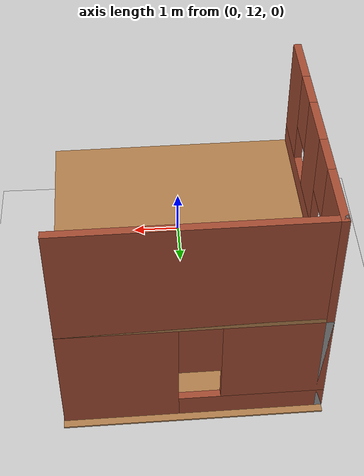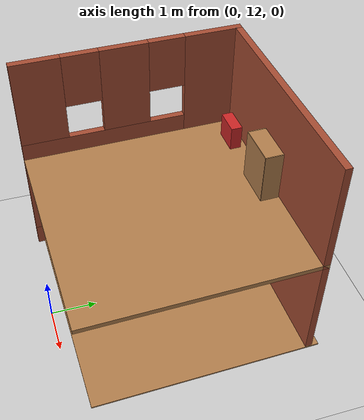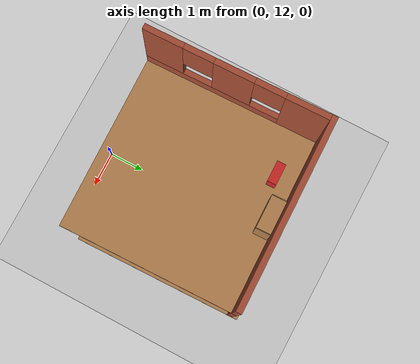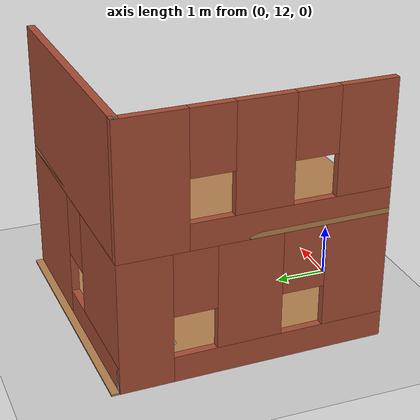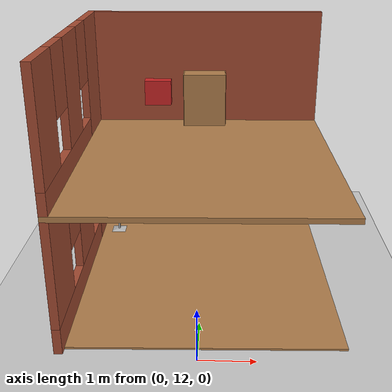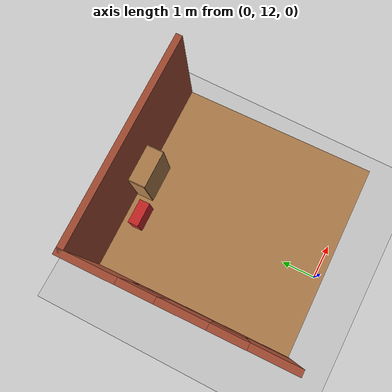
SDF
<sdf version="1.6">
 <world name="default">
  <model name="ground_plane">
   <static>1</static>
   <link name="link">
    <collision name="collision">
     <geometry><plane><normal>0 0 1</normal><size>100 100</size></plane></geometry>
     <surface><friction><ode><mu>100</mu><mu2>50</mu2></ode></friction></surface>
    </collision>
    <visual name="visual">
     <cast_shadows>0</cast_shadows>
     <geometry><plane><normal>0 0 1</normal><size>100 100</size></plane></geometry>
     <material>
      <script><uri>file://media/materials/scripts/gazebo.material</uri><name>Gazebo/Grey</name></script>
     </material>
    </visual>
   </link>
  </model>
  <model name="building1">
   <link name="Floor_0">
    <pose>0 0 2.5 0 -0 0</pose>
    <inertial>
     <mass>1</mass>
     <inertia><ixx>1</ixx><ixy>0</ixy><ixz>0</ixz><iyy>1</iyy><iyz>0</iyz><izz>1</izz></inertia>
    </inertial>
    <visual name="Floor_0_Visual">
     <pose>0 0 0.05 0 -0 0</pose>
     <geometry><box><size>5 5 0.1</size></box></geometry>
     <material>
      <script><uri>file://media/materials/scripts/gazebo.material</uri><name>Gazebo/Wood</name></script>
      <ambient>1 1 1 1</ambient>
      <shader type="pixel"><normal_map>__default__</normal_map></shader>
     </material>
     <meta><layer>1</layer></meta>
    </visual>
    <collision name="Floor_0_Collision">
     <pose>0 0 0.05 0 -0 0</pose>
     <geometry><box><size>5 5 0.1</size></box></geometry>
     <surface>
      <friction>
       <ode><mu>1</mu><mu2>1</mu2><fdir1>0 0 0</fdir1><slip1>0</slip1><slip2>0</slip2></ode>
       <torsional>
        <coefficient>1</coefficient>
        <patch_radius>0</patch_radius>
        <surface_radius>0</surface_radius>
        <use_patch_radius>1</use_patch_radius>
        <ode><slip>0</slip></ode>
       </torsional>
      </friction>
      <bounce><restitution_coefficient>0</restitution_coefficient><threshold>1e+06</threshold></bounce>
      <contact>
       <collide_without_contact>0</collide_without_contact>
       <collide_without_contact_bitmask>1</collide_without_contact_bitmask>
       <collide_bitmask>1</collide_bitmask>
       <ode>
        <soft_cfm>0</soft_cfm>
        <soft_erp>0.2</soft_erp>
        <kp>1e+13</kp>
        <kd>1</kd>
        <max_vel>0.01</max_vel>
        <min_depth>0</min_depth>
       </ode>
       <bullet>
        <split_impulse>1</split_impulse>
        <split_impulse_penetration_threshold>-0.01</split_impulse_penetration_threshold>
        <soft_cfm>0</soft_cfm>
        <soft_erp>0.2</soft_erp>
        <kp>1e+13</kp>
        <kd>1</kd>
       </bullet>
      </contact>
     </surface>
    </collision>
   </link>
   <link name="Floor_0_clone">
    <pose>-0.013101 -0.148574 -0.075535 0 -0 0</pose>
    <gravity>0</gravity>
    <inertial>
     <mass>1</mass>
     <inertia><ixx>1</ixx><ixy>0</ixy><ixz>0</ixz><iyy>1</iyy><iyz>0</iyz><izz>1</izz></inertia>
    </inertial>
    <visual name="Floor_0_Visual">
     <pose>0 0 0.05 0 -0 0</pose>
     <geometry><box><size>5 5 0.1</size></box></geometry>
     <material>
      <script><uri>file://media/materials/scripts/gazebo.material</uri><name>Gazebo/Wood</name></script>
      <ambient>1 1 1 1</ambient>
      <shader type="pixel"><normal_map>__default__</normal_map></shader>
     </material>
     <meta><layer>1</layer></meta>
    </visual>
    <collision name="Floor_0_Collision">
     <pose>0 0 0.05 0 -0 0</pose>
     <geometry><box><size>5 5 0.1</size></box></geometry>
     <surface>
      <friction>
       <ode><mu>1</mu><mu2>1</mu2><fdir1>0 0 0</fdir1><slip1>0</slip1><slip2>0</slip2></ode>
       <torsional>
        <coefficient>1</coefficient>
        <patch_radius>0</patch_radius>
        <surface_radius>0</surface_radius>
        <use_patch_radius>1</use_patch_radius>
        <ode><slip>0</slip></ode>
       </torsional>
      </friction>
      <bounce><restitution_coefficient>0</restitution_coefficient><threshold>1e+06</threshold></bounce>
      <contact>
       <collide_without_contact>0</collide_without_contact>
       <collide_without_contact_bitmask>1</collide_without_contact_bitmask>
       <collide_bitmask>1</collide_bitmask>
       <ode>
        <soft_cfm>0</soft_cfm>
        <soft_erp>0.2</soft_erp>
        <kp>1e+13</kp>
        <kd>1</kd>
        <max_vel>0.01</max_vel>
        <min_depth>0</min_depth>
       </ode>
       <bullet>
        <split_impulse>1</split_impulse>
        <split_impulse_penetration_threshold>-0.01</split_impulse_penetration_threshold>
        <soft_cfm>0</soft_cfm>
        <soft_erp>0.2</soft_erp>
        <kp>1e+13</kp>
        <kd>1</kd>
       </bullet>
      </contact>
     </surface>
    </collision>
   </link>
   <link name="Wall_1">
    <pose>0 -2.425 0 0 -0 0</pose>
    <visual name="Wall_1_Visual_3">
     <pose>0.109106 0 1.9 0 -0 0</pose>
     <geometry><box><size>0.8 0.15 1.2</size></box></geometry>
     <material>
      <script><uri>file://media/materials/scripts/gazebo.material</uri><name>Gazebo/Bricks</name></script>
      <ambient>1 1 1 1</ambient>
      <shader type="pixel"/>
     </material>
     <meta><layer>0</layer></meta>
    </visual>
    <visual name="Wall_1_Visual_1">
     <pose>1.10455 0 0.25 0 -0 0</pose>
     <geometry><box><size>2.79089 0.15 0.5</size></box></geometry>
     <material>
      <script><uri>file://media/materials/scripts/gazebo.material</uri><name>Gazebo/Bricks</name></script>
      <ambient>1 1 1 1</ambient>
      <shader type="pixel"/>
     </material>
     <meta><layer>0</layer></meta>
    </visual>
    <visual name="Wall_1_Visual_2">
     <pose>1.50455 0 1.5 0 -0 0</pose>
     <geometry><box><size>1.99089 0.15 2</size></box></geometry>
     <material>
      <script><uri>file://media/materials/scripts/gazebo.material</uri><name>Gazebo/Bricks</name></script>
      <ambient>1 1 1 1</ambient>
      <shader type="pixel"/>
     </material>
     <meta><layer>0</layer></meta>
    </visual>
    <visual name="Wall_1_Visual_0">
     <pose>-1.39545 0 1.25 0 -0 0</pose>
     <geometry><box><size>2.20911 0.15 2.5</size></box></geometry>
     <material>
      <script><uri>file://media/materials/scripts/gazebo.material</uri><name>Gazebo/Bricks</name></script>
      <ambient>1 1 1 1</ambient>
      <shader type="pixel"/>
     </material>
     <meta><layer>0</layer></meta>
    </visual>
    <collision name="Wall_1_Collision_3">
     <pose>0.109106 0 1.9 0 -0 0</pose>
     <geometry><box><size>0.8 0.15 1.2</size></box></geometry>
     <surface>
      <friction>
       <ode><mu>1</mu><mu2>1</mu2><fdir1>0 0 0</fdir1><slip1>0</slip1><slip2>0</slip2></ode>
       <torsional>
        <coefficient>1</coefficient>
        <patch_radius>0</patch_radius>
        <surface_radius>0</surface_radius>
        <use_patch_radius>1</use_patch_radius>
        <ode><slip>0</slip></ode>
       </torsional>
      </friction>
      <bounce><restitution_coefficient>0</restitution_coefficient><threshold>1e+06</threshold></bounce>
      <contact>
       <collide_without_contact>0</collide_without_contact>
       <collide_without_contact_bitmask>1</collide_without_contact_bitmask>
       <collide_bitmask>1</collide_bitmask>
       <ode>
        <soft_cfm>0</soft_cfm>
        <soft_erp>0.2</soft_erp>
        <kp>1e+13</kp>
        <kd>1</kd>
        <max_vel>0.01</max_vel>
        <min_depth>0</min_depth>
       </ode>
       <bullet>
        <split_impulse>1</split_impulse>
        <split_impulse_penetration_threshold>-0.01</split_impulse_penetration_threshold>
        <soft_cfm>0</soft_cfm>
        <soft_erp>0.2</soft_erp>
        <kp>1e+13</kp>
        <kd>1</kd>
       </bullet>
      </contact>
     </surface>
    </collision>
    <collision name="Wall_1_Collision_2">
     <pose>1.50455 0 1.5 0 -0 0</pose>
     <geometry><box><size>1.99089 0.15 2</size></box></geometry>
     <surface>
      <friction>
       <ode><mu>1</mu><mu2>1</mu2><fdir1>0 0 0</fdir1><slip1>0</slip1><slip2>0</slip2></ode>
       <torsional>
        <coefficient>1</coefficient>
        <patch_radius>0</patch_radius>
        <surface_radius>0</surface_radius>
        <use_patch_radius>1</use_patch_radius>
        <ode><slip>0</slip></ode>
       </torsional>
      </friction>
      <bounce><restitution_coefficient>0</restitution_coefficient><threshold>1e+06</threshold></bounce>
      <contact>
       <collide_without_contact>0</collide_without_contact>
       <collide_without_contact_bitmask>1</collide_without_contact_bitmask>
       <collide_bitmask>1</collide_bitmask>
       <ode>
        <soft_cfm>0</soft_cfm>
        <soft_erp>0.2</soft_erp>
        <kp>1e+13</kp>
        <kd>1</kd>
        <max_vel>0.01</max_vel>
        <min_depth>0</min_depth>
       </ode>
       <bullet>
        <split_impulse>1</split_impulse>
        <split_impulse_penetration_threshold>-0.01</split_impulse_penetration_threshold>
        <soft_cfm>0</soft_cfm>
        <soft_erp>0.2</soft_erp>
        <kp>1e+13</kp>
        <kd>1</kd>
       </bullet>
      </contact>
     </surface>
    </collision>
    <collision name="Wall_1_Collision_1">
     <pose>1.10455 0 0.25 0 -0 0</pose>
     <geometry><box><size>2.79089 0.15 0.5</size></box></geometry>
     <surface>
      <friction>
       <ode><mu>1</mu><mu2>1</mu2><fdir1>0 0 0</fdir1><slip1>0</slip1><slip2>0</slip2></ode>
       <torsional>
        <coefficient>1</coefficient>
        <patch_radius>0</patch_radius>
        <surface_radius>0</surface_radius>
        <use_patch_radius>1</use_patch_radius>
        <ode><slip>0</slip></ode>
       </torsional>
      </friction>
      <bounce><restitution_coefficient>0</restitution_coefficient><threshold>1e+06</threshold></bounce>
      <contact>
       <collide_without_contact>0</collide_without_contact>
       <collide_without_contact_bitmask>1</collide_without_contact_bitmask>
       <collide_bitmask>1</collide_bitmask>
       <ode>
        <soft_cfm>0</soft_cfm>
        <soft_erp>0.2</soft_erp>
        <kp>1e+13</kp>
        <kd>1</kd>
        <max_vel>0.01</max_vel>
        <min_depth>0</min_depth>
       </ode>
       <bullet>
        <split_impulse>1</split_impulse>
        <split_impulse_penetration_threshold>-0.01</split_impulse_penetration_threshold>
        <soft_cfm>0</soft_cfm>
        <soft_erp>0.2</soft_erp>
        <kp>1e+13</kp>
        <kd>1</kd>
       </bullet>
      </contact>
     </surface>
    </collision>
    <collision name="Wall_1_Collision_0">
     <pose>-1.39545 0 1.25 0 -0 0</pose>
     <geometry><box><size>2.20911 0.15 2.5</size></box></geometry>
     <surface>
      <friction>
       <ode><mu>1</mu><mu2>1</mu2><fdir1>0 0 0</fdir1><slip1>0</slip1><slip2>0</slip2></ode>
       <torsional>
        <coefficient>1</coefficient>
        <patch_radius>0</patch_radius>
        <surface_radius>0</surface_radius>
        <use_patch_radius>1</use_patch_radius>
        <ode><slip>0</slip></ode>
       </torsional>
      </friction>
      <bounce><restitution_coefficient>0</restitution_coefficient><threshold>1e+06</threshold></bounce>
      <contact>
       <collide_without_contact>0</collide_without_contact>
       <collide_without_contact_bitmask>1</collide_without_contact_bitmask>
       <collide_bitmask>1</collide_bitmask>
       <ode>
        <soft_cfm>0</soft_cfm>
        <soft_erp>0.2</soft_erp>
        <kp>1e+13</kp>
        <kd>1</kd>
        <max_vel>0.01</max_vel>
        <min_depth>0</min_depth>
       </ode>
       <bullet>
        <split_impulse>1</split_impulse>
        <split_impulse_penetration_threshold>-0.01</split_impulse_penetration_threshold>
        <soft_cfm>0</soft_cfm>
        <soft_erp>0.2</soft_erp>
        <kp>1e+13</kp>
        <kd>1</kd>
       </bullet>
      </contact>
     </surface>
    </collision>
   </link>
   <link name="Wall_2">
    <pose>2.425 -2.425 0 0 -0 0</pose>
    <visual name="Wall_2_Visual">
     <pose>0 0 1.25 0 -0 0</pose>
     <geometry><box><size>0.15 0.15 2.5</size></box></geometry>
     <material>
      <script><uri>file://media/materials/scripts/gazebo.material</uri><name>Gazebo/Grey</name></script>
      <ambient>1 1 1 1</ambient>
      <shader type="pixel"/>
     </material>
     <meta><layer>0</layer></meta>
    </visual>
    <collision name="Wall_2_Collision">
     <pose>0 0 1.25 0 -0 0</pose>
     <geometry><box><size>0.15 0.15 2.5</size></box></geometry>
     <surface>
      <friction>
       <ode><mu>1</mu><mu2>1</mu2><fdir1>0 0 0</fdir1><slip1>0</slip1><slip2>0</slip2></ode>
       <torsional>
        <coefficient>1</coefficient>
        <patch_radius>0</patch_radius>
        <surface_radius>0</surface_radius>
        <use_patch_radius>1</use_patch_radius>
        <ode><slip>0</slip></ode>
       </torsional>
      </friction>
      <bounce><restitution_coefficient>0</restitution_coefficient><threshold>1e+06</threshold></bounce>
      <contact>
       <collide_without_contact>0</collide_without_contact>
       <collide_without_contact_bitmask>1</collide_without_contact_bitmask>
       <collide_bitmask>1</collide_bitmask>
       <ode>
        <soft_cfm>0</soft_cfm>
        <soft_erp>0.2</soft_erp>
        <kp>1e+13</kp>
        <kd>1</kd>
        <max_vel>0.01</max_vel>
        <min_depth>0</min_depth>
       </ode>
       <bullet>
        <split_impulse>1</split_impulse>
        <split_impulse_penetration_threshold>-0.01</split_impulse_penetration_threshold>
        <soft_cfm>0</soft_cfm>
        <soft_erp>0.2</soft_erp>
        <kp>1e+13</kp>
        <kd>1</kd>
       </bullet>
      </contact>
     </surface>
    </collision>
   </link>
   <link name="Wall_3">
    <pose>2.425 0 0 0 -0 1.5708</pose>
    <visual name="Wall_3_Visual_4">
     <pose>-1.11345 0 1.9 0 -0 0</pose>
     <geometry><box><size>0.8 0.15 1.2</size></box></geometry>
     <material>
      <script><uri>file://media/materials/scripts/gazebo.material</uri><name>Gazebo/Bricks</name></script>
      <ambient>1 1 1 1</ambient>
      <shader type="pixel"/>
     </material>
     <meta><layer>0</layer></meta>
    </visual>
    <visual name="Wall_3_Visual_2">
     <pose>-0.109669 0 1.5 0 -0 0</pose>
     <geometry><box><size>1.20755 0.15 2</size></box></geometry>
     <material>
      <script><uri>file://media/materials/scripts/gazebo.material</uri><name>Gazebo/Bricks</name></script>
      <ambient>1 1 1 1</ambient>
      <shader type="pixel"/>
     </material>
     <meta><layer>0</layer></meta>
    </visual>
    <visual name="Wall_3_Visual_1">
     <pose>0.493277 0 0.25 0 -0 0</pose>
     <geometry><box><size>4.01345 0.15 0.5</size></box></geometry>
     <material>
      <script><uri>file://media/materials/scripts/gazebo.material</uri><name>Gazebo/Bricks</name></script>
      <ambient>1 1 1 1</ambient>
      <shader type="pixel"/>
     </material>
     <meta><layer>0</layer></meta>
    </visual>
    <visual name="Wall_3_Visual_5">
     <pose>0.894108 0 1.9 0 -0 0</pose>
     <geometry><box><size>0.8 0.15 1.2</size></box></geometry>
     <material>
      <script><uri>file://media/materials/scripts/gazebo.material</uri><name>Gazebo/Bricks</name></script>
      <ambient>1 1 1 1</ambient>
      <shader type="pixel"/>
     </material>
     <meta><layer>0</layer></meta>
    </visual>
    <visual name="Wall_3_Visual_0">
     <pose>-2.00672 0 1.25 0 -0 0</pose>
     <geometry><box><size>0.986553 0.15 2.5</size></box></geometry>
     <material>
      <script><uri>file://media/materials/scripts/gazebo.material</uri><name>Gazebo/Bricks</name></script>
      <ambient>1 1 1 1</ambient>
      <shader type="pixel"/>
     </material>
     <meta><layer>0</layer></meta>
    </visual>
    <visual name="Wall_3_Visual_3">
     <pose>1.89705 0 1.5 0 -0 0</pose>
     <geometry><box><size>1.20589 0.15 2</size></box></geometry>
     <material>
      <script><uri>file://media/materials/scripts/gazebo.material</uri><name>Gazebo/Bricks</name></script>
      <ambient>1 1 1 1</ambient>
      <shader type="pixel"/>
     </material>
     <meta><layer>0</layer></meta>
    </visual>
    <collision name="Wall_3_Collision_3">
     <pose>1.89705 0 1.5 0 -0 0</pose>
     <geometry><box><size>1.20589 0.15 2</size></box></geometry>
     <surface>
      <friction>
       <ode><mu>1</mu><mu2>1</mu2><fdir1>0 0 0</fdir1><slip1>0</slip1><slip2>0</slip2></ode>
       <torsional>
        <coefficient>1</coefficient>
        <patch_radius>0</patch_radius>
        <surface_radius>0</surface_radius>
        <use_patch_radius>1</use_patch_radius>
        <ode><slip>0</slip></ode>
       </torsional>
      </friction>
      <bounce><restitution_coefficient>0</restitution_coefficient><threshold>1e+06</threshold></bounce>
      <contact>
       <collide_without_contact>0</collide_without_contact>
       <collide_without_contact_bitmask>1</collide_without_contact_bitmask>
       <collide_bitmask>1</collide_bitmask>
       <ode>
        <soft_cfm>0</soft_cfm>
        <soft_erp>0.2</soft_erp>
        <kp>1e+13</kp>
        <kd>1</kd>
        <max_vel>0.01</max_vel>
        <min_depth>0</min_depth>
       </ode>
       <bullet>
        <split_impulse>1</split_impulse>
        <split_impulse_penetration_threshold>-0.01</split_impulse_penetration_threshold>
        <soft_cfm>0</soft_cfm>
        <soft_erp>0.2</soft_erp>
        <kp>1e+13</kp>
        <kd>1</kd>
       </bullet>
      </contact>
     </surface>
    </collision>
    <collision name="Wall_3_Collision_1">
     <pose>0.493277 0 0.25 0 -0 0</pose>
     <geometry><box><size>4.01345 0.15 0.5</size></box></geometry>
     <surface>
      <friction>
       <ode><mu>1</mu><mu2>1</mu2><fdir1>0 0 0</fdir1><slip1>0</slip1><slip2>0</slip2></ode>
       <torsional>
        <coefficient>1</coefficient>
        <patch_radius>0</patch_radius>
        <surface_radius>0</surface_radius>
        <use_patch_radius>1</use_patch_radius>
        <ode><slip>0</slip></ode>
       </torsional>
      </friction>
      <bounce><restitution_coefficient>0</restitution_coefficient><threshold>1e+06</threshold></bounce>
      <contact>
       <collide_without_contact>0</collide_without_contact>
       <collide_without_contact_bitmask>1</collide_without_contact_bitmask>
       <collide_bitmask>1</collide_bitmask>
       <ode>
        <soft_cfm>0</soft_cfm>
        <soft_erp>0.2</soft_erp>
        <kp>1e+13</kp>
        <kd>1</kd>
        <max_vel>0.01</max_vel>
        <min_depth>0</min_depth>
       </ode>
       <bullet>
        <split_impulse>1</split_impulse>
        <split_impulse_penetration_threshold>-0.01</split_impulse_penetration_threshold>
        <soft_cfm>0</soft_cfm>
        <soft_erp>0.2</soft_erp>
        <kp>1e+13</kp>
        <kd>1</kd>
       </bullet>
      </contact>
     </surface>
    </collision>
    <collision name="Wall_3_Collision_4">
     <pose>-1.11345 0 1.9 0 -0 0</pose>
     <geometry><box><size>0.8 0.15 1.2</size></box></geometry>
     <surface>
      <friction>
       <ode><mu>1</mu><mu2>1</mu2><fdir1>0 0 0</fdir1><slip1>0</slip1><slip2>0</slip2></ode>
       <torsional>
        <coefficient>1</coefficient>
        <patch_radius>0</patch_radius>
        <surface_radius>0</surface_radius>
        <use_patch_radius>1</use_patch_radius>
        <ode><slip>0</slip></ode>
       </torsional>
      </friction>
      <bounce><restitution_coefficient>0</restitution_coefficient><threshold>1e+06</threshold></bounce>
      <contact>
       <collide_without_contact>0</collide_without_contact>
       <collide_without_contact_bitmask>1</collide_without_contact_bitmask>
       <collide_bitmask>1</collide_bitmask>
       <ode>
        <soft_cfm>0</soft_cfm>
        <soft_erp>0.2</soft_erp>
        <kp>1e+13</kp>
        <kd>1</kd>
        <max_vel>0.01</max_vel>
        <min_depth>0</min_depth>
       </ode>
       <bullet>
        <split_impulse>1</split_impulse>
        <split_impulse_penetration_threshold>-0.01</split_impulse_penetration_threshold>
        <soft_cfm>0</soft_cfm>
        <soft_erp>0.2</soft_erp>
        <kp>1e+13</kp>
        <kd>1</kd>
       </bullet>
      </contact>
     </surface>
    </collision>
    <collision name="Wall_3_Collision_5">
     <pose>0.894108 0 1.9 0 -0 0</pose>
     <geometry><box><size>0.8 0.15 1.2</size></box></geometry>
     <surface>
      <friction>
       <ode><mu>1</mu><mu2>1</mu2><fdir1>0 0 0</fdir1><slip1>0</slip1><slip2>0</slip2></ode>
       <torsional>
        <coefficient>1</coefficient>
        <patch_radius>0</patch_radius>
        <surface_radius>0</surface_radius>
        <use_patch_radius>1</use_patch_radius>
        <ode><slip>0</slip></ode>
       </torsional>
      </friction>
      <bounce><restitution_coefficient>0</restitution_coefficient><threshold>1e+06</threshold></bounce>
      <contact>
       <collide_without_contact>0</collide_without_contact>
       <collide_without_contact_bitmask>1</collide_without_contact_bitmask>
       <collide_bitmask>1</collide_bitmask>
       <ode>
        <soft_cfm>0</soft_cfm>
        <soft_erp>0.2</soft_erp>
        <kp>1e+13</kp>
        <kd>1</kd>
        <max_vel>0.01</max_vel>
        <min_depth>0</min_depth>
       </ode>
       <bullet>
        <split_impulse>1</split_impulse>
        <split_impulse_penetration_threshold>-0.01</split_impulse_penetration_threshold>
        <soft_cfm>0</soft_cfm>
        <soft_erp>0.2</soft_erp>
        <kp>1e+13</kp>
        <kd>1</kd>
       </bullet>
      </contact>
     </surface>
    </collision>
    <collision name="Wall_3_Collision_2">
     <pose>-0.109669 0 1.5 0 -0 0</pose>
     <geometry><box><size>1.20755 0.15 2</size></box></geometry>
     <surface>
      <friction>
       <ode><mu>1</mu><mu2>1</mu2><fdir1>0 0 0</fdir1><slip1>0</slip1><slip2>0</slip2></ode>
       <torsional>
        <coefficient>1</coefficient>
        <patch_radius>0</patch_radius>
        <surface_radius>0</surface_radius>
        <use_patch_radius>1</use_patch_radius>
        <ode><slip>0</slip></ode>
       </torsional>
      </friction>
      <bounce><restitution_coefficient>0</restitution_coefficient><threshold>1e+06</threshold></bounce>
      <contact>
       <collide_without_contact>0</collide_without_contact>
       <collide_without_contact_bitmask>1</collide_without_contact_bitmask>
       <collide_bitmask>1</collide_bitmask>
       <ode>
        <soft_cfm>0</soft_cfm>
        <soft_erp>0.2</soft_erp>
        <kp>1e+13</kp>
        <kd>1</kd>
        <max_vel>0.01</max_vel>
        <min_depth>0</min_depth>
       </ode>
       <bullet>
        <split_impulse>1</split_impulse>
        <split_impulse_penetration_threshold>-0.01</split_impulse_penetration_threshold>
        <soft_cfm>0</soft_cfm>
        <soft_erp>0.2</soft_erp>
        <kp>1e+13</kp>
        <kd>1</kd>
       </bullet>
      </contact>
     </surface>
    </collision>
    <collision name="Wall_3_Collision_0">
     <pose>-2.00672 0 1.25 0 -0 0</pose>
     <geometry><box><size>0.986553 0.15 2.5</size></box></geometry>
     <surface>
      <friction>
       <ode><mu>1</mu><mu2>1</mu2><fdir1>0 0 0</fdir1><slip1>0</slip1><slip2>0</slip2></ode>
       <torsional>
        <coefficient>1</coefficient>
        <patch_radius>0</patch_radius>
        <surface_radius>0</surface_radius>
        <use_patch_radius>1</use_patch_radius>
        <ode><slip>0</slip></ode>
       </torsional>
      </friction>
      <bounce><restitution_coefficient>0</restitution_coefficient><threshold>1e+06</threshold></bounce>
      <contact>
       <collide_without_contact>0</collide_without_contact>
       <collide_without_contact_bitmask>1</collide_without_contact_bitmask>
       <collide_bitmask>1</collide_bitmask>
       <ode>
        <soft_cfm>0</soft_cfm>
        <soft_erp>0.2</soft_erp>
        <kp>1e+13</kp>
        <kd>1</kd>
        <max_vel>0.01</max_vel>
        <min_depth>0</min_depth>
       </ode>
       <bullet>
        <split_impulse>1</split_impulse>
        <split_impulse_penetration_threshold>-0.01</split_impulse_penetration_threshold>
        <soft_cfm>0</soft_cfm>
        <soft_erp>0.2</soft_erp>
        <kp>1e+13</kp>
        <kd>1</kd>
       </bullet>
      </contact>
     </surface>
    </collision>
   </link>
   <link name="Wall_7">
    <pose>0 -2.425 2.5 0 -0 0</pose>
    <visual name="Wall_7_Visual">
     <pose>0 0 1.25 0 -0 0</pose>
     <geometry><box><size>5 0.15 2.5</size></box></geometry>
     <material>
      <script><uri>file://media/materials/scripts/gazebo.material</uri><name>Gazebo/Bricks</name></script>
      <ambient>1 1 1 1</ambient>
      <shader type="pixel"/>
     </material>
     <meta><layer>1</layer></meta>
    </visual>
    <collision name="Wall_7_Collision">
     <pose>0 0 1.25 0 -0 0</pose>
     <geometry><box><size>5 0.15 2.5</size></box></geometry>
     <surface>
      <friction>
       <ode><mu>1</mu><mu2>1</mu2><fdir1>0 0 0</fdir1><slip1>0</slip1><slip2>0</slip2></ode>
       <torsional>
        <coefficient>1</coefficient>
        <patch_radius>0</patch_radius>
        <surface_radius>0</surface_radius>
        <use_patch_radius>1</use_patch_radius>
        <ode><slip>0</slip></ode>
       </torsional>
      </friction>
      <bounce><restitution_coefficient>0</restitution_coefficient><threshold>1e+06</threshold></bounce>
      <contact>
       <collide_without_contact>0</collide_without_contact>
       <collide_without_contact_bitmask>1</collide_without_contact_bitmask>
       <collide_bitmask>1</collide_bitmask>
       <ode>
        <soft_cfm>0</soft_cfm>
        <soft_erp>0.2</soft_erp>
        <kp>1e+13</kp>
        <kd>1</kd>
        <max_vel>0.01</max_vel>
        <min_depth>0</min_depth>
       </ode>
       <bullet>
        <split_impulse>1</split_impulse>
        <split_impulse_penetration_threshold>-0.01</split_impulse_penetration_threshold>
        <soft_cfm>0</soft_cfm>
        <soft_erp>0.2</soft_erp>
        <kp>1e+13</kp>
        <kd>1</kd>
       </bullet>
      </contact>
     </surface>
    </collision>
   </link>
   <link name="Wall_8">
    <pose>2.425 -2.425 2.5 0 -0 0</pose>
    <visual name="Wall_8_Visual">
     <pose>0 0 1.25 0 -0 0</pose>
     <geometry><box><size>0.15 0.15 2.5</size></box></geometry>
     <material>
      <script><uri>file://media/materials/scripts/gazebo.material</uri><name>Gazebo/Grey</name></script>
      <ambient>1 1 1 1</ambient>
      <shader type="pixel"/>
     </material>
     <meta><layer>1</layer></meta>
    </visual>
    <collision name="Wall_8_Collision">
     <pose>0 0 1.25 0 -0 0</pose>
     <geometry><box><size>0.15 0.15 2.5</size></box></geometry>
     <surface>
      <friction>
       <ode><mu>1</mu><mu2>1</mu2><fdir1>0 0 0</fdir1><slip1>0</slip1><slip2>0</slip2></ode>
       <torsional>
        <coefficient>1</coefficient>
        <patch_radius>0</patch_radius>
        <surface_radius>0</surface_radius>
        <use_patch_radius>1</use_patch_radius>
        <ode><slip>0</slip></ode>
       </torsional>
      </friction>
      <bounce><restitution_coefficient>0</restitution_coefficient><threshold>1e+06</threshold></bounce>
      <contact>
       <collide_without_contact>0</collide_without_contact>
       <collide_without_contact_bitmask>1</collide_without_contact_bitmask>
       <collide_bitmask>1</collide_bitmask>
       <ode>
        <soft_cfm>0</soft_cfm>
        <soft_erp>0.2</soft_erp>
        <kp>1e+13</kp>
        <kd>1</kd>
        <max_vel>0.01</max_vel>
        <min_depth>0</min_depth>
       </ode>
       <bullet>
        <split_impulse>1</split_impulse>
        <split_impulse_penetration_threshold>-0.01</split_impulse_penetration_threshold>
        <soft_cfm>0</soft_cfm>
        <soft_erp>0.2</soft_erp>
        <kp>1e+13</kp>
        <kd>1</kd>
       </bullet>
      </contact>
     </surface>
    </collision>
   </link>
   <link name="Wall_9">
    <pose>2.425 0 2.5 0 -0 1.5708</pose>
    <visual name="Wall_9_Visual_0">
     <pose>-1.85873 0 1.25 0 -0 0</pose>
     <geometry><box><size>1.28254 0.15 2.5</size></box></geometry>
     <material>
      <script><uri>file://media/materials/scripts/gazebo.material</uri><name>Gazebo/Bricks</name></script>
      <ambient>1 1 1 1</ambient>
      <shader type="pixel"/>
     </material>
     <meta><layer>1</layer></meta>
    </visual>
    <visual name="Wall_9_Visual_1">
     <pose>0.641268 0 0.25 0 -0 0</pose>
     <geometry><box><size>3.71746 0.15 0.5</size></box></geometry>
     <material>
      <script><uri>file://media/materials/scripts/gazebo.material</uri><name>Gazebo/Bricks</name></script>
      <ambient>1 1 1 1</ambient>
      <shader type="pixel"/>
     </material>
     <meta><layer>1</layer></meta>
    </visual>
    <visual name="Wall_9_Visual_2">
     <pose>0.112536 0 1.5 0 -0 0</pose>
     <geometry><box><size>1.06 0.15 2</size></box></geometry>
     <material>
      <script><uri>file://media/materials/scripts/gazebo.material</uri><name>Gazebo/Bricks</name></script>
      <ambient>1 1 1 1</ambient>
      <shader type="pixel"/>
     </material>
     <meta><layer>1</layer></meta>
    </visual>
    <visual name="Wall_9_Visual_3">
     <pose>1.97127 0 1.5 0 -0 0</pose>
     <geometry><box><size>1.05746 0.15 2</size></box></geometry>
     <material>
      <script><uri>file://media/materials/scripts/gazebo.material</uri><name>Gazebo/Bricks</name></script>
      <ambient>1 1 1 1</ambient>
      <shader type="pixel"/>
     </material>
     <meta><layer>1</layer></meta>
    </visual>
    <visual name="Wall_9_Visual_4">
     <pose>-0.817464 0 1.9 0 -0 0</pose>
     <geometry><box><size>0.8 0.15 1.2</size></box></geometry>
     <material>
      <script><uri>file://media/materials/scripts/gazebo.material</uri><name>Gazebo/Bricks</name></script>
      <ambient>1 1 1 1</ambient>
      <shader type="pixel"/>
     </material>
     <meta><layer>1</layer></meta>
    </visual>
    <visual name="Wall_9_Visual_5">
     <pose>1.04254 0 1.9 0 -0 0</pose>
     <geometry><box><size>0.8 0.15 1.2</size></box></geometry>
     <material>
      <script><uri>file://media/materials/scripts/gazebo.material</uri><name>Gazebo/Bricks</name></script>
      <ambient>1 1 1 1</ambient>
      <shader type="pixel"/>
     </material>
     <meta><layer>1</layer></meta>
    </visual>
    <collision name="Wall_9_Collision_0">
     <pose>-1.85873 0 1.25 0 -0 0</pose>
     <geometry><box><size>1.28254 0.15 2.5</size></box></geometry>
     <surface>
      <friction>
       <ode><mu>1</mu><mu2>1</mu2><fdir1>0 0 0</fdir1><slip1>0</slip1><slip2>0</slip2></ode>
       <torsional>
        <coefficient>1</coefficient>
        <patch_radius>0</patch_radius>
        <surface_radius>0</surface_radius>
        <use_patch_radius>1</use_patch_radius>
        <ode><slip>0</slip></ode>
       </torsional>
      </friction>
      <bounce><restitution_coefficient>0</restitution_coefficient><threshold>1e+06</threshold></bounce>
      <contact>
       <collide_without_contact>0</collide_without_contact>
       <collide_without_contact_bitmask>1</collide_without_contact_bitmask>
       <collide_bitmask>1</collide_bitmask>
       <ode>
        <soft_cfm>0</soft_cfm>
        <soft_erp>0.2</soft_erp>
        <kp>1e+13</kp>
        <kd>1</kd>
        <max_vel>0.01</max_vel>
        <min_depth>0</min_depth>
       </ode>
       <bullet>
        <split_impulse>1</split_impulse>
        <split_impulse_penetration_threshold>-0.01</split_impulse_penetration_threshold>
        <soft_cfm>0</soft_cfm>
        <soft_erp>0.2</soft_erp>
        <kp>1e+13</kp>
        <kd>1</kd>
       </bullet>
      </contact>
     </surface>
    </collision>
    <collision name="Wall_9_Collision_1">
     <pose>0.641268 0 0.25 0 -0 0</pose>
     <geometry><box><size>3.71746 0.15 0.5</size></box></geometry>
     <surface>
      <friction>
       <ode><mu>1</mu><mu2>1</mu2><fdir1>0 0 0</fdir1><slip1>0</slip1><slip2>0</slip2></ode>
       <torsional>
        <coefficient>1</coefficient>
        <patch_radius>0</patch_radius>
        <surface_radius>0</surface_radius>
        <use_patch_radius>1</use_patch_radius>
        <ode><slip>0</slip></ode>
       </torsional>
      </friction>
      <bounce><restitution_coefficient>0</restitution_coefficient><threshold>1e+06</threshold></bounce>
      <contact>
       <collide_without_contact>0</collide_without_contact>
       <collide_without_contact_bitmask>1</collide_without_contact_bitmask>
       <collide_bitmask>1</collide_bitmask>
       <ode>
        <soft_cfm>0</soft_cfm>
        <soft_erp>0.2</soft_erp>
        <kp>1e+13</kp>
        <kd>1</kd>
        <max_vel>0.01</max_vel>
        <min_depth>0</min_depth>
       </ode>
       <bullet>
        <split_impulse>1</split_impulse>
        <split_impulse_penetration_threshold>-0.01</split_impulse_penetration_threshold>
        <soft_cfm>0</soft_cfm>
        <soft_erp>0.2</soft_erp>
        <kp>1e+13</kp>
        <kd>1</kd>
       </bullet>
      </contact>
     </surface>
    </collision>
    <collision name="Wall_9_Collision_2">
     <pose>0.112536 0 1.5 0 -0 0</pose>
     <geometry><box><size>1.06 0.15 2</size></box></geometry>
     <surface>
      <friction>
       <ode><mu>1</mu><mu2>1</mu2><fdir1>0 0 0</fdir1><slip1>0</slip1><slip2>0</slip2></ode>
       <torsional>
        <coefficient>1</coefficient>
        <patch_radius>0</patch_radius>
        <surface_radius>0</surface_radius>
        <use_patch_radius>1</use_patch_radius>
        <ode><slip>0</slip></ode>
       </torsional>
      </friction>
      <bounce><restitution_coefficient>0</restitution_coefficient><threshold>1e+06</threshold></bounce>
      <contact>
       <collide_without_contact>0</collide_without_contact>
       <collide_without_contact_bitmask>1</collide_without_contact_bitmask>
       <collide_bitmask>1</collide_bitmask>
       <ode>
        <soft_cfm>0</soft_cfm>
        <soft_erp>0.2</soft_erp>
        <kp>1e+13</kp>
        <kd>1</kd>
        <max_vel>0.01</max_vel>
        <min_depth>0</min_depth>
       </ode>
       <bullet>
        <split_impulse>1</split_impulse>
        <split_impulse_penetration_threshold>-0.01</split_impulse_penetration_threshold>
        <soft_cfm>0</soft_cfm>
        <soft_erp>0.2</soft_erp>
        <kp>1e+13</kp>
        <kd>1</kd>
       </bullet>
      </contact>
     </surface>
    </collision>
    <collision name="Wall_9_Collision_3">
     <pose>1.97127 0 1.5 0 -0 0</pose>
     <geometry><box><size>1.05746 0.15 2</size></box></geometry>
     <surface>
      <friction>
       <ode><mu>1</mu><mu2>1</mu2><fdir1>0 0 0</fdir1><slip1>0</slip1><slip2>0</slip2></ode>
       <torsional>
        <coefficient>1</coefficient>
        <patch_radius>0</patch_radius>
        <surface_radius>0</surface_radius>
        <use_patch_radius>1</use_patch_radius>
        <ode><slip>0</slip></ode>
       </torsional>
      </friction>
      <bounce><restitution_coefficient>0</restitution_coefficient><threshold>1e+06</threshold></bounce>
      <contact>
       <collide_without_contact>0</collide_without_contact>
       <collide_without_contact_bitmask>1</collide_without_contact_bitmask>
       <collide_bitmask>1</collide_bitmask>
       <ode>
        <soft_cfm>0</soft_cfm>
        <soft_erp>0.2</soft_erp>
        <kp>1e+13</kp>
        <kd>1</kd>
        <max_vel>0.01</max_vel>
        <min_depth>0</min_depth>
       </ode>
       <bullet>
        <split_impulse>1</split_impulse>
        <split_impulse_penetration_threshold>-0.01</split_impulse_penetration_threshold>
        <soft_cfm>0</soft_cfm>
        <soft_erp>0.2</soft_erp>
        <kp>1e+13</kp>
        <kd>1</kd>
       </bullet>
      </contact>
     </surface>
    </collision>
    <collision name="Wall_9_Collision_4">
     <pose>-0.817464 0 1.9 0 -0 0</pose>
     <geometry><box><size>0.8 0.15 1.2</size></box></geometry>
     <surface>
      <friction>
       <ode><mu>1</mu><mu2>1</mu2><fdir1>0 0 0</fdir1><slip1>0</slip1><slip2>0</slip2></ode>
       <torsional>
        <coefficient>1</coefficient>
        <patch_radius>0</patch_radius>
        <surface_radius>0</surface_radius>
        <use_patch_radius>1</use_patch_radius>
        <ode><slip>0</slip></ode>
       </torsional>
      </friction>
      <bounce><restitution_coefficient>0</restitution_coefficient><threshold>1e+06</threshold></bounce>
      <contact>
       <collide_without_contact>0</collide_without_contact>
       <collide_without_contact_bitmask>1</collide_without_contact_bitmask>
       <collide_bitmask>1</collide_bitmask>
       <ode>
        <soft_cfm>0</soft_cfm>
        <soft_erp>0.2</soft_erp>
        <kp>1e+13</kp>
        <kd>1</kd>
        <max_vel>0.01</max_vel>
        <min_depth>0</min_depth>
       </ode>
       <bullet>
        <split_impulse>1</split_impulse>
        <split_impulse_penetration_threshold>-0.01</split_impulse_penetration_threshold>
        <soft_cfm>0</soft_cfm>
        <soft_erp>0.2</soft_erp>
        <kp>1e+13</kp>
        <kd>1</kd>
       </bullet>
      </contact>
     </surface>
    </collision>
    <collision name="Wall_9_Collision_5">
     <pose>1.04254 0 1.9 0 -0 0</pose>
     <geometry><box><size>0.8 0.15 1.2</size></box></geometry>
     <surface>
      <friction>
       <ode><mu>1</mu><mu2>1</mu2><fdir1>0 0 0</fdir1><slip1>0</slip1><slip2>0</slip2></ode>
       <torsional>
        <coefficient>1</coefficient>
        <patch_radius>0</patch_radius>
        <surface_radius>0</surface_radius>
        <use_patch_radius>1</use_patch_radius>
        <ode><slip>0</slip></ode>
       </torsional>
      </friction>
      <bounce><restitution_coefficient>0</restitution_coefficient><threshold>1e+06</threshold></bounce>
      <contact>
       <collide_without_contact>0</collide_without_contact>
       <collide_without_contact_bitmask>1</collide_without_contact_bitmask>
       <collide_bitmask>1</collide_bitmask>
       <ode>
        <soft_cfm>0</soft_cfm>
        <soft_erp>0.2</soft_erp>
        <kp>1e+13</kp>
        <kd>1</kd>
        <max_vel>0.01</max_vel>
        <min_depth>0</min_depth>
       </ode>
       <bullet>
        <split_impulse>1</split_impulse>
        <split_impulse_penetration_threshold>-0.01</split_impulse_penetration_threshold>
        <soft_cfm>0</soft_cfm>
        <soft_erp>0.2</soft_erp>
        <kp>1e+13</kp>
        <kd>1</kd>
       </bullet>
      </contact>
     </surface>
    </collision>
   </link>
   <link name="link_1_clone">
    <inertial>
     <mass>0.0689277</mass>
     <inertia>
      <ixx>0.00189334</ixx>
      <ixy>0</ixy>
      <ixz>0</ixz>
      <iyy>0.00334986</iyy>
      <iyz>0</iyz>
      <izz>0.00210027</izz>
     </inertia>
    </inertial>
    <pose>0.978068 -1.80526 3.40252 0 -0 0</pose>
    <gravity>0</gravity>
    <visual name="visual">
     <geometry><box><size>0.556426 0.23672 0.523053</size></box></geometry>
     <material>
      <lighting>1</lighting>
      <script><uri>file://media/materials/scripts/gazebo.material</uri><name>Gazebo/Red</name></script>
      <shader type="pixel"><normal_map>__default__</normal_map></shader>
      <ambient>1 0 0 1</ambient>
      <diffuse>1 0 0 1</diffuse>
      <specular>0.1 0.1 0.1 1</specular>
      <emissive>0 0 0 1</emissive>
     </material>
    </visual>
    <collision name="collision">
     <geometry><box><size>0.556426 0.23672 0.523053</size></box></geometry>
     <surface>
      <friction>
       <ode><mu>1</mu><mu2>1</mu2><fdir1>0 0 0</fdir1><slip1>0</slip1><slip2>0</slip2></ode>
       <torsional>
        <coefficient>1</coefficient>
        <patch_radius>0</patch_radius>
        <surface_radius>0</surface_radius>
        <use_patch_radius>1</use_patch_radius>
        <ode><slip>0</slip></ode>
       </torsional>
      </friction>
      <bounce><restitution_coefficient>0</restitution_coefficient><threshold>1e+06</threshold></bounce>
      <contact>
       <collide_without_contact>0</collide_without_contact>
       <collide_without_contact_bitmask>1</collide_without_contact_bitmask>
       <collide_bitmask>1</collide_bitmask>
       <ode>
        <soft_cfm>0</soft_cfm>
        <soft_erp>0.2</soft_erp>
        <kp>1e+13</kp>
        <kd>1</kd>
        <max_vel>0.01</max_vel>
        <min_depth>0</min_depth>
       </ode>
       <bullet>
        <split_impulse>1</split_impulse>
        <split_impulse_penetration_threshold>-0.01</split_impulse_penetration_threshold>
        <soft_cfm>0</soft_cfm>
        <soft_erp>0.2</soft_erp>
        <kp>1e+13</kp>
        <kd>1</kd>
       </bullet>
      </contact>
     </surface>
    </collision>
   </link>
   <model name="bookshelf">
    <static>1</static>
    <link name="link">
     <inertial><mass>1</mass></inertial>
     <collision name="back">
      <pose>0 0.005 0.6 0 -0 0</pose>
      <geometry><box><size>0.9 0.01 1.2</size></box></geometry>
     </collision>
     <visual name="visual1">
      <pose>0 0.005 0.6 0 -0 0</pose>
      <geometry><box><size>0.9 0.01 1.2</size></box></geometry>
      <material>
       <script><uri>file://media/materials/scripts/gazebo.material</uri><name>Gazebo/Wood</name></script>
      </material>
     </visual>
     <collision name="left_side">
      <pose>0.45 -0.195 0.6 0 -0 0</pose>
      <geometry><box><size>0.02 0.4 1.2</size></box></geometry>
     </collision>
     <visual name="visual2">
      <pose>0.45 -0.195 0.6 0 -0 0</pose>
      <geometry><box><size>0.02 0.4 1.2</size></box></geometry>
      <material>
       <script><uri>file://media/materials/scripts/gazebo.material</uri><name>Gazebo/Wood</name></script>
      </material>
     </visual>
     <collision name="right_side">
      <pose>-0.45 -0.195 0.6 0 -0 0</pose>
      <geometry><box><size>0.02 0.4 1.2</size></box></geometry>
     </collision>
     <visual name="visual3">
      <pose>-0.45 -0.195 0.6 0 -0 0</pose>
      <geometry><box><size>0.02 0.4 1.2</size></box></geometry>
      <material>
       <script><uri>file://media/materials/scripts/gazebo.material</uri><name>Gazebo/Wood</name></script>
      </material>
     </visual>
     <collision name="bottom">
      <pose>0 -0.195 0.03 0 -0 0</pose>
      <geometry><box><size>0.88 0.4 0.06</size></box></geometry>
     </collision>
     <visual name="visual4">
      <pose>0 -0.195 0.03 0 -0 0</pose>
      <geometry><box><size>0.88 0.4 0.06</size></box></geometry>
      <material>
       <script><uri>file://media/materials/scripts/gazebo.material</uri><name>Gazebo/Wood</name></script>
      </material>
     </visual>
     <collision name="top">
      <pose>0 -0.195 1.19 0 -0 0</pose>
      <geometry><box><size>0.88 0.4 0.02</size></box></geometry>
     </collision>
     <visual name="visual5">
      <pose>0 -0.195 1.19 0 -0 0</pose>
      <geometry><box><size>0.88 0.4 0.02</size></box></geometry>
      <material>
       <script><uri>file://media/materials/scripts/gazebo.material</uri><name>Gazebo/Wood</name></script>
      </material>
     </visual>
     <collision name="low_shelf">
      <pose>0 -0.195 0.43 0 -0 0</pose>
      <geometry><box><size>0.88 0.4 0.02</size></box></geometry>
     </collision>
     <visual name="visual6">
      <pose>0 -0.195 0.43 0 -0 0</pose>
      <geometry><box><size>0.88 0.4 0.02</size></box></geometry>
      <material>
       <script><uri>file://media/materials/scripts/gazebo.material</uri><name>Gazebo/Wood</name></script>
      </material>
     </visual>
     <collision name="high_shelf">
      <pose>0 -0.195 0.8 0 -0 0</pose>
      <geometry><box><size>0.88 0.4 0.02</size></box></geometry>
     </collision>
     <visual name="visual7">
      <pose>0 -0.195 0.8 0 -0 0</pose>
      <geometry><box><size>0.88 0.4 0.02</size></box></geometry>
      <material>
       <script><uri>file://media/materials/scripts/gazebo.material</uri><name>Gazebo/Wood</name></script>
      </material>
     </visual>
    </link>
    <pose>-0.009673 -1.94077 2.5361 0 -0 0</pose>
   </model>
   <model name="cafe_table">
    <static>1</static>
    <link name="link">
     <collision name="surface">
      <pose>0 0 0.755 0 -0 0</pose>
      <geometry><box><size>0.913 0.913 0.04</size></box></geometry>
     </collision>
     <collision name="column">
      <pose>0 0 0.37 0 -0 0</pose>
      <geometry><box><size>0.042 0.042 0.74</size></box></geometry>
     </collision>
     <collision name="base">
      <pose>0 0 0.02 0 -0 0</pose>
      <geometry><box><size>0.56 0.56 0.04</size></box></geometry>
     </collision>
     <visual name="visual">
      <geometry><mesh><uri>model://cafe_table/meshes/cafe_table.dae</uri></mesh></geometry>
     </visual>
    </link>
    <pose>2.00241 -1.9218 0 0 -0 0</pose>
   </model>
   <static>1</static>
   <pose>0.016549 14.6326 0 0 0 -3.12046</pose>
  </model>
 </world>
</sdf>
